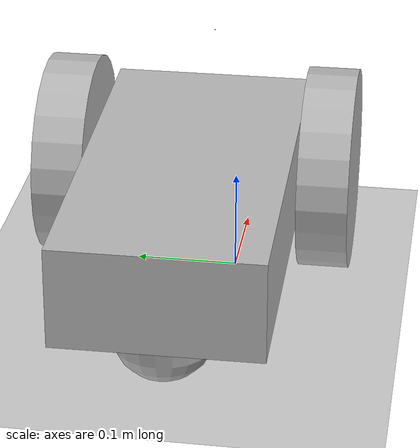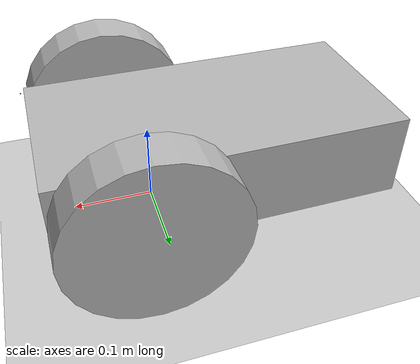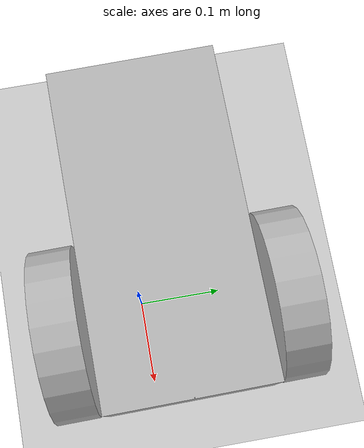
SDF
<sdf version="1.7">
 <world name="default">
  <light name="sun" type="directional">
   <pose>0 0 10 0 -0 0</pose>
   <diffuse>0.8 0.8 0.8 1</diffuse>
   <specular>0.2 0.2 0.2 1</specular>
   <attenuation>
    <range>1000</range>
    <constant>0.9</constant>
    <linear>0.01</linear>
    <quadratic>0.001</quadratic>
   </attenuation>
   <direction>-0.5 0.1 -0.9</direction>
   <spot><inner_angle>0</inner_angle><outer_angle>0</outer_angle><falloff>0</falloff></spot>
  </light>
  <model name="ground_plane">
   <static>1</static>
   <link name="link">
    <collision name="collision">
     <geometry><plane><normal>0 0 1</normal><size>100 100</size></plane></geometry>
     <surface>
      <contact><collide_bitmask>65535</collide_bitmask></contact>
      <friction><ode><mu>100</mu><mu2>50</mu2></ode></friction>
     </surface>
    </collision>
    <visual name="visual">
     <cast_shadows>0</cast_shadows>
     <geometry><plane><normal>0 0 1</normal><size>100 100</size></plane></geometry>
     <material>
      <script><uri>file://media/materials/scripts/gazebo.material</uri><name>Gazebo/Grey</name></script>
     </material>
    </visual>
   </link>
  </model>
  <gravity>0 0 -9.8</gravity>
  <magnetic_field>6e-06 2.3e-05 -4.2e-05</magnetic_field>
  <atmosphere type="adiabatic"/>
  <physics type="ode">
   <max_step_size>0.001</max_step_size>
   <real_time_factor>1</real_time_factor>
   <real_time_update_rate>1000</real_time_update_rate>
  </physics>
  <scene><ambient>0.4 0.4 0.4 1</ambient><background>0.7 0.7 0.7 1</background><shadows>1</shadows></scene>
  <spherical_coordinates>
   <surface_model>EARTH_WGS84</surface_model>
   <latitude_deg>0</latitude_deg>
   <longitude_deg>0</longitude_deg>
   <elevation>0</elevation>
   <heading_deg>0</heading_deg>
  </spherical_coordinates>
  <model name="diffdrive">
   <static>0</static>
   <link name="chassis">
    <pose>0 0 0.1 0 -0 0</pose>
    <inertial>
     <mass>10</mass>
     <pose>0 0 0.1 0 -0 0</pose>
     <inertia><ixx>0.5</ixx><iyy>1</iyy><izz>0.1</izz><ixy>0</ixy><ixz>0</ixz><iyz>0</iyz></inertia>
    </inertial>
    <collision name="collision"><geometry><box><size>0.4 0.2 0.1</size></box></geometry></collision>
    <visual name="visual"><geometry><box><size>0.4 0.2 0.1</size></box></geometry></visual>
    <collision name="caster_collision">
     <pose>-0.15 0 -0.05 0 -0 0</pose>
     <geometry><sphere><radius>0.05</radius></sphere></geometry>
     <surface><friction><ode><mu>0</mu><mu2>0</mu2><slip1>1</slip1><slip2>1</slip2></ode></friction></surface>
    </collision>
    <visual name="caster_visual">
     <pose>-0.15 0 -0.05 0 -0 0</pose>
     <geometry><sphere><radius>0.05</radius></sphere></geometry>
    </visual>
   </link>
   <link name="left_wheel">
    <pose>0.1 0.13 0.1 -0 1.5707 1.5707</pose>
    <collision name="collision">
     <geometry><cylinder><radius>0.1</radius><length>0.05</length></cylinder></geometry>
    </collision>
    <visual name="visual">
     <geometry><cylinder><radius>0.1</radius><length>0.05</length></cylinder></geometry>
    </visual>
    <inertial>
     <inertia><ixx>1</ixx><ixy>0</ixy><ixz>0</ixz><iyy>1</iyy><iyz>0</iyz><izz>1</izz></inertia>
     <mass>1</mass>
    </inertial>
   </link>
   <link name="right_wheel">
    <pose>0.1 -0.13 0.1 -0 1.5707 1.5707</pose>
    <collision name="collision">
     <geometry><cylinder><radius>0.1</radius><length>0.05</length></cylinder></geometry>
    </collision>
    <visual name="visual">
     <geometry><cylinder><radius>0.1</radius><length>0.05</length></cylinder></geometry>
    </visual>
    <inertial>
     <inertia><ixx>1</ixx><ixy>0</ixy><ixz>0</ixz><iyy>1</iyy><iyz>0</iyz><izz>1</izz></inertia>
     <mass>1</mass>
    </inertial>
   </link>
   <joint name="left_wheel_hinge" type="revolute">
    <pose>0 0 -0.03 0 -0 0</pose>
    <child>left_wheel</child>
    <parent>chassis</parent>
    <axis>
     <xyz expressed_in="__model__">0 1 0</xyz>
     <limit><lower>-1e+16</lower><upper>1e+16</upper></limit>
     <dynamics><spring_reference>0</spring_reference><spring_stiffness>0</spring_stiffness></dynamics>
    </axis>
   </joint>
   <joint name="right_wheel_hinge" type="revolute">
    <pose>0 0 0.03 0 -0 0</pose>
    <child>right_wheel</child>
    <parent>chassis</parent>
    <axis>
     <xyz expressed_in="__model__">0 1 0</xyz>
     <limit><lower>-1e+16</lower><upper>1e+16</upper></limit>
     <dynamics><spring_reference>0</spring_reference><spring_stiffness>0</spring_stiffness></dynamics>
    </axis>
   </joint>
   <link name="camera_link">
    <gravity>0</gravity>
    <pose>0.2 0 0.2 0 0.1 0</pose>
    <inertial>
     <mass>0.1</mass>
     <inertia><ixx>1</ixx><ixy>0</ixy><ixz>0</ixz><iyy>1</iyy><iyz>0</iyz><izz>1</izz></inertia>
    </inertial>
    <visual name="visual"><geometry><box><size>0.001 0.001 0.001</size></box></geometry></visual>
    <sensor name="camera" type="camera">
     <camera>
      <horizontal_fov>2.79253</horizontal_fov>
      <image><width>1280</width><height>720</height></image>
      <clip><near>0.01</near><far>3</far></clip>
     </camera>
     <always_on>1</always_on>
     <update_rate>10</update_rate>
     <visualize>1</visualize>
     <plugin name="camera_controller" filename="libgazebo_ros_camera.so">
      <alwaysOn>1</alwaysOn>
      <updateRate>0.0</updateRate>
      <cameraName>jetbot_camera</cameraName>
      <imageTopicName>image_raw</imageTopicName>
      <cameraInfoTopicName>camera_info</cameraInfoTopicName>
      <frameName>camera</frameName>
      <hackBaseline>0.07</hackBaseline>
      <distortionK1>0.0</distortionK1>
      <distortionK2>0.0</distortionK2>
      <distortionK3>0.0</distortionK3>
      <distortionT1>0.0</distortionT1>
      <distortionT2>0.0</distortionT2>
     </plugin>
    </sensor>
   </link>
   <joint name="camera_joint" type="revolute">
    <parent>chassis</parent>
    <child>camera_link</child>
    <axis>
     <xyz expressed_in="__model__">0.1 0 0</xyz>
     <limit><lower>-1e+16</lower><upper>1e+16</upper></limit>
     <dynamics><spring_reference>0</spring_reference><spring_stiffness>0</spring_stiffness></dynamics>
    </axis>
   </joint>
   <plugin name="differential_drive_controller" filename="libgazebo_ros_diff_drive.so">
    <alwaysOn>1</alwaysOn>
    <updateRate>20</updateRate>
    <leftJoint>left_wheel_hinge</leftJoint>
    <rightJoint>right_wheel_hinge</rightJoint>
    <wheelSeparation>0.4</wheelSeparation>
    <wheelDiameter>0.1</wheelDiameter>
    <torque>20</torque>
    <commandTopic>cmd_vel</commandTopic>
    <odometryTopic>odom</odometryTopic>
    <odometryFrame>odom</odometryFrame>
    <robotBaseFrame>base_footprint</robotBaseFrame>
   </plugin>
   <pose>-0.066872 0.038634 1e-06 -2e-06 -4e-06 0.012005</pose>
  </model>
 </world>
</sdf>
